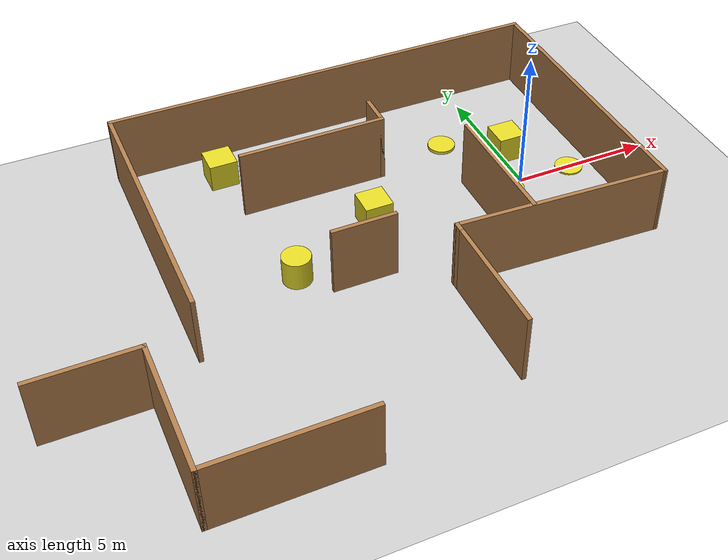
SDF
<sdf version="1.7">
 <world name="default">
  <light name="sun" type="directional">
   <pose>0 0 10 0 -0 0</pose>
   <diffuse>0.8 0.8 0.8 1</diffuse>
   <specular>0.2 0.2 0.2 1</specular>
   <attenuation>
    <range>1000</range>
    <constant>0.9</constant>
    <linear>0.01</linear>
    <quadratic>0.001</quadratic>
   </attenuation>
   <direction>-0.5 0.1 -0.9</direction>
   <spot><inner_angle>0</inner_angle><outer_angle>0</outer_angle><falloff>0</falloff></spot>
  </light>
  <model name="ground_plane">
   <static>1</static>
   <link name="link">
    <collision name="collision">
     <geometry><plane><normal>0 0 1</normal><size>100 100</size></plane></geometry>
     <surface><friction><ode><mu>100</mu><mu2>50</mu2></ode></friction></surface>
    </collision>
    <visual name="visual">
     <cast_shadows>0</cast_shadows>
     <geometry><plane><normal>0 0 1</normal><size>100 100</size></plane></geometry>
     <material>
      <script><uri>file://media/materials/scripts/gazebo.material</uri><name>Gazebo/Grey</name></script>
     </material>
    </visual>
   </link>
  </model>
  <gravity>0 0 -9.8</gravity>
  <magnetic_field>6e-06 2.3e-05 -4.2e-05</magnetic_field>
  <atmosphere type="adiabatic"/>
  <physics type="ode">
   <max_step_size>0.001</max_step_size>
   <real_time_factor>1</real_time_factor>
   <real_time_update_rate>1000</real_time_update_rate>
  </physics>
  <scene><ambient>0.4 0.4 0.4 1</ambient><background>0.7 0.7 0.7 1</background><shadows>1</shadows></scene>
  <audio><device>default</device></audio>
  <spherical_coordinates>
   <surface_model>EARTH_WGS84</surface_model>
   <latitude_deg>0</latitude_deg>
   <elevation>0</elevation>
   <heading_deg>0</heading_deg>
  </spherical_coordinates>
  <model name="world">
   <pose>-5.06321 -1.16 0 0 -0 0</pose>
   <link name="Wall_13">
    <collision name="Wall_13_Collision">
     <geometry><box><size>0.5 0.15 2.5</size></box></geometry>
     <pose>0 0 1.25 0 -0 0</pose>
    </collision>
    <visual name="Wall_13_Visual">
     <pose>0 0 1.25 0 -0 0</pose>
     <geometry><box><size>0.5 0.15 2.5</size></box></geometry>
     <material>
      <script><uri>file://media/materials/scripts/gazebo.material</uri><name>Gazebo/WoodPallet</name></script>
     </material>
    </visual>
    <pose>0.523208 -2.825 0 0 -0 1.5708</pose>
   </link>
   <link name="Wall_15">
    <collision name="Wall_15_Collision">
     <geometry><box><size>5.25 0.15 2.5</size></box></geometry>
     <pose>0 0 1.25 0 -0 0</pose>
    </collision>
    <visual name="Wall_15_Visual">
     <pose>0 0 1.25 0 -0 0</pose>
     <geometry><box><size>5.25 0.15 2.5</size></box></geometry>
     <material>
      <script><uri>file://media/materials/scripts/gazebo.material</uri><name>Gazebo/WoodPallet</name></script>
     </material>
    </visual>
    <pose>-1.87461 3.45479 0 0 -0 0</pose>
   </link>
   <link name="Wall_16">
    <collision name="Wall_16_Collision">
     <geometry><box><size>1.25 0.15 2.5</size></box></geometry>
     <pose>0 0 1.25 0 -0 0</pose>
    </collision>
    <visual name="Wall_16_Visual">
     <pose>0 0 1.25 0 -0 0</pose>
     <geometry><box><size>1.25 0.15 2.5</size></box></geometry>
     <material>
      <script><uri>file://media/materials/scripts/gazebo.material</uri><name>Gazebo/WoodPallet</name></script>
     </material>
    </visual>
    <pose>0.675395 4.00479 0 0 -0 1.5708</pose>
   </link>
   <link name="Wall_18">
    <collision name="Wall_18_Collision">
     <geometry><box><size>4.75 0.15 2.5</size></box></geometry>
     <pose>0 0 1.25 0 -0 0</pose>
    </collision>
    <visual name="Wall_18_Visual">
     <pose>0 0 1.25 0 -0 0</pose>
     <geometry><box><size>4.75 0.15 2.5</size></box></geometry>
     <material>
      <script><uri>file://media/materials/scripts/gazebo.material</uri><name>Gazebo/WoodPallet</name></script>
     </material>
    </visual>
    <pose>3.17754 -0.435457 0 0 -0 -1.5708</pose>
   </link>
   <link name="Wall_2">
    <collision name="Wall_2_Collision">
     <geometry><box><size>7.56122 0.15 2.5</size></box></geometry>
     <pose>0 0 1.25 0 -0 0</pose>
    </collision>
    <visual name="Wall_2_Visual">
     <pose>0 0 1.25 0 -0 0</pose>
     <geometry><box><size>7.56122 0.15 2.5</size></box></geometry>
     <material>
      <script><uri>file://media/materials/scripts/gazebo.material</uri><name>Gazebo/WoodPallet</name></script>
     </material>
    </visual>
    <pose>4.22205 -2.81847 0 0 -0 -0.049008</pose>
   </link>
   <link name="Wall_20">
    <collision name="Wall_20_Collision">
     <geometry><box><size>2.25 0.15 2.5</size></box></geometry>
     <pose>0 0 1.25 0 -0 0</pose>
    </collision>
    <visual name="Wall_20_Visual">
     <pose>0 0 1.25 0 -0 0</pose>
     <geometry><box><size>2.25 0.15 2.5</size></box></geometry>
     <material>
      <script><uri>file://media/materials/scripts/gazebo.material</uri><name>Gazebo/WoodPallet</name></script>
     </material>
    </visual>
    <pose>-2.05586 -1.35473 0 0 -0 0</pose>
   </link>
   <link name="Wall_3">
    <collision name="Wall_3_Collision">
     <geometry><box><size>10.25 0.15 2.5</size></box></geometry>
     <pose>0 0 1.25 0 -0 0</pose>
    </collision>
    <visual name="Wall_3_Visual">
     <pose>0 0 1.25 0 -0 0</pose>
     <geometry><box><size>10.25 0.15 2.5</size></box></geometry>
     <material>
      <script><uri>file://media/materials/scripts/gazebo.material</uri><name>Gazebo/WoodPallet</name></script>
     </material>
    </visual>
    <pose>7.92321 2.05 0 0 -0 1.5708</pose>
   </link>
   <link name="Wall_4">
    <collision name="Wall_4_Collision">
     <geometry><box><size>16 0.15 2.5</size></box></geometry>
     <pose>0 0 1.25 0 -0 0</pose>
    </collision>
    <visual name="Wall_4_Visual">
     <pose>0 0 1.25 0 -0 0</pose>
     <geometry><box><size>16 0.15 2.5</size></box></geometry>
     <material>
      <script><uri>file://media/materials/scripts/gazebo.material</uri><name>Gazebo/WoodPallet</name></script>
     </material>
    </visual>
    <pose>-0.001792 7.1 0 0 -0 3.14159</pose>
   </link>
   <link name="Wall_5">
    <collision name="Wall_5_Collision">
     <geometry><box><size>9.75 0.15 2.5</size></box></geometry>
     <pose>0 0 1.25 0 -0 0</pose>
    </collision>
    <visual name="Wall_5_Visual">
     <pose>0 0 1.25 0 -0 0</pose>
     <geometry><box><size>9.75 0.15 2.5</size></box></geometry>
     <material>
      <script><uri>file://media/materials/scripts/gazebo.material</uri><name>Gazebo/WoodPallet</name></script>
     </material>
    </visual>
    <pose>-7.92679 2.3 0 0 -0 -1.5708</pose>
   </link>
   <link name="Wall_6">
    <collision name="Wall_6_Collision">
     <geometry><box><size>3.5 0.15 2.5</size></box></geometry>
     <pose>0 0 1.25 0 -0 0</pose>
    </collision>
    <visual name="Wall_6_Visual">
     <pose>0 0 1.25 0 -0 0</pose>
     <geometry><box><size>3.5 0.15 2.5</size></box></geometry>
     <material>
      <script><uri>file://media/materials/scripts/gazebo.material</uri><name>Gazebo/WoodPallet</name></script>
     </material>
    </visual>
    <pose>-11.315 -3.66 0 0 -0 0</pose>
   </link>
   <link name="Wall_7">
    <collision name="Wall_7_Collision">
     <geometry><box><size>4.75 0.15 2.5</size></box></geometry>
     <pose>0 0 1.25 0 -0 0</pose>
    </collision>
    <visual name="Wall_7_Visual">
     <pose>0 0 1.25 0 -0 0</pose>
     <geometry><box><size>4.75 0.15 2.5</size></box></geometry>
     <material>
      <script><uri>file://media/materials/scripts/gazebo.material</uri><name>Gazebo/WoodPallet</name></script>
     </material>
    </visual>
    <pose>-9.64 -5.96 0 0 0 -1.5708</pose>
   </link>
   <link name="Wall_8">
    <collision name="Wall_8_Collision">
     <geometry><box><size>5.25 0.15 2.5</size></box></geometry>
     <pose>0 0 1.25 0 -0 0</pose>
    </collision>
    <visual name="Wall_8_Visual">
     <pose>0 0 1.25 0 -0 0</pose>
     <geometry><box><size>5.25 0.15 2.5</size></box></geometry>
     <material>
      <script><uri>file://media/materials/scripts/gazebo.material</uri><name>Gazebo/WoodPallet</name></script>
     </material>
    </visual>
    <pose>-7.09 -8.26 0 0 -0 0</pose>
   </link>
   <link name="Wall_9">
    <collision name="Wall_9_Collision">
     <geometry><box><size>4.25 0.15 2.5</size></box></geometry>
     <pose>0 0 1.25 0 -0 0</pose>
    </collision>
    <visual name="Wall_9_Visual">
     <pose>0 0 1.25 0 -0 0</pose>
     <geometry><box><size>4.25 0.15 2.5</size></box></geometry>
     <material>
      <script><uri>file://media/materials/scripts/gazebo.material</uri><name>Gazebo/WoodPallet</name></script>
     </material>
    </visual>
    <pose>0.523208 -5.05 0 0 -0 1.5708</pose>
   </link>
   <static>1</static>
  </model>
  <model name="unit_box">
   <pose>0.271395 1.66255 0.5 0 -0 0</pose>
   <link name="link">
    <collision name="collision"><geometry><box><size>1 1 1</size></box></geometry></collision>
    <visual name="visual">
     <geometry><box><size>1 1 1</size></box></geometry>
     <material>
      <script><name>Gazebo/Yellow</name><uri>file://media/materials/scripts/gazebo.material</uri></script>
     </material>
    </visual>
    <inertial>
     <inertia><ixx>1</ixx><ixy>0</ixy><ixz>0</ixz><iyy>1</iyy><iyz>0</iyz><izz>1</izz></inertia>
     <mass>1</mass>
    </inertial>
   </link>
  </model>
  <model name="unit_box_0">
   <pose>-5.6571 0.096216 0.5 0 -0 0</pose>
   <link name="link">
    <collision name="collision"><geometry><box><size>1 1 1</size></box></geometry></collision>
    <visual name="visual">
     <geometry><box><size>1 1 1</size></box></geometry>
     <material>
      <script><name>Gazebo/Yellow</name><uri>file://media/materials/scripts/gazebo.material</uri></script>
     </material>
    </visual>
    <inertial>
     <inertia><ixx>1</ixx><ixy>0</ixy><ixz>0</ixz><iyy>1</iyy><iyz>0</iyz><izz>1</izz></inertia>
     <mass>1</mass>
    </inertial>
   </link>
  </model>
  <model name="unit_box_1">
   <pose>-9.69416 4.45618 0.5 0 -0 0</pose>
   <link name="link">
    <collision name="collision"><geometry><box><size>1 1 1</size></box></geometry></collision>
    <visual name="visual">
     <geometry><box><size>1 1 1</size></box></geometry>
     <material>
      <script><name>Gazebo/Yellow</name><uri>file://media/materials/scripts/gazebo.material</uri></script>
     </material>
    </visual>
    <inertial>
     <inertia><ixx>1</ixx><ixy>0</ixy><ixz>0</ixz><iyy>1</iyy><iyz>0</iyz><izz>1</izz></inertia>
     <mass>1</mass>
    </inertial>
   </link>
  </model>
  <model name="unit_cylinder">
   <pose>-9.07595 -1.525 0.499998 -0 -0 -0</pose>
   <link name="link">
    <collision name="collision">
     <geometry><cylinder><radius>0.5</radius><length>1</length></cylinder></geometry>
    </collision>
    <visual name="visual">
     <geometry><cylinder><radius>0.5</radius><length>1</length></cylinder></geometry>
     <material>
      <script><name>Gazebo/Yellow</name><uri>file://media/materials/scripts/gazebo.material</uri></script>
     </material>
    </visual>
    <inertial>
     <inertia><ixx>1</ixx><ixy>0</ixy><ixz>0</ixz><iyy>1</iyy><iyz>0</iyz><izz>1</izz></inertia>
     <mass>1</mass>
    </inertial>
   </link>
  </model>
  <model name="unit_cylinder_0">
   <pose>1.97293 -0.023429 0.032745 0 -0 0</pose>
   <link name="link">
    <inertial>
     <mass>1</mass>
     <inertia><ixx>0.145833</ixx><ixy>0</ixy><ixz>0</ixz><iyy>0.145833</iyy><iyz>0</iyz><izz>0.125</izz></inertia>
    </inertial>
    <collision name="collision">
     <geometry><cylinder><radius>0.5</radius><length>0.06549</length></cylinder></geometry>
    </collision>
    <visual name="visual">
     <geometry><cylinder><radius>0.5</radius><length>0.06549</length></cylinder></geometry>
     <material>
      <script><name>Gazebo/Yellow</name><uri>file://media/materials/scripts/gazebo.material</uri></script>
     </material>
    </visual>
   </link>
  </model>
  <model name="unit_cylinder_1">
   <pose>-1.20135 -1.27171 0.499993 -3e-06 -4e-06 -0</pose>
   <link name="link">
    <inertial>
     <mass>1</mass>
     <inertia><ixx>0.145833</ixx><ixy>0</ixy><ixz>0</ixz><iyy>0.145833</iyy><iyz>0</iyz><izz>0.125</izz></inertia>
    </inertial>
    <collision name="collision">
     <geometry><cylinder><radius>0.5</radius><length>1</length></cylinder></geometry>
    </collision>
    <visual name="visual">
     <geometry><cylinder><radius>0.5</radius><length>1</length></cylinder></geometry>
     <material>
      <script><name>Gazebo/Yellow</name><uri>file://media/materials/scripts/gazebo.material</uri></script>
     </material>
    </visual>
   </link>
  </model>
  <model name="unit_cylinder_2">
   <pose>-1.68644 2.97442 0.060453 0 -0 0</pose>
   <link name="link">
    <inertial>
     <mass>1</mass>
     <inertia><ixx>0.145833</ixx><ixy>0</ixy><ixz>0</ixz><iyy>0.145833</iyy><iyz>0</iyz><izz>0.125</izz></inertia>
    </inertial>
    <collision name="collision">
     <geometry><cylinder><radius>0.5</radius><length>0.120906</length></cylinder></geometry>
    </collision>
    <visual name="visual">
     <geometry><cylinder><radius>0.5</radius><length>0.120906</length></cylinder></geometry>
     <material>
      <script><name>Gazebo/Yellow</name><uri>file://media/materials/scripts/gazebo.material</uri></script>
     </material>
    </visual>
   </link>
  </model>
 </world>
</sdf>
